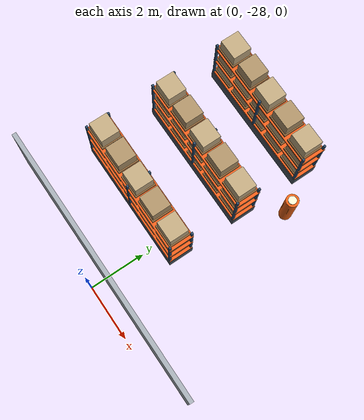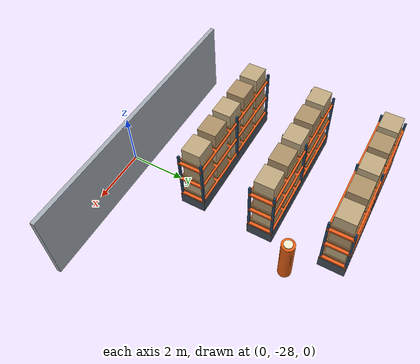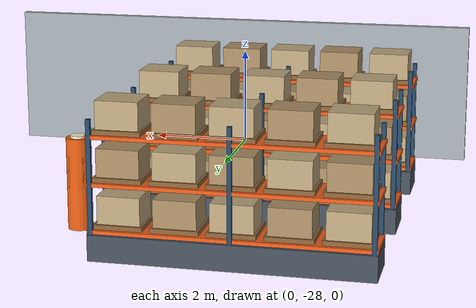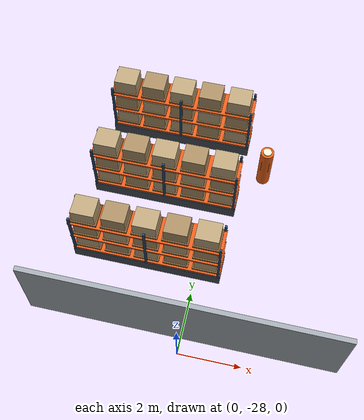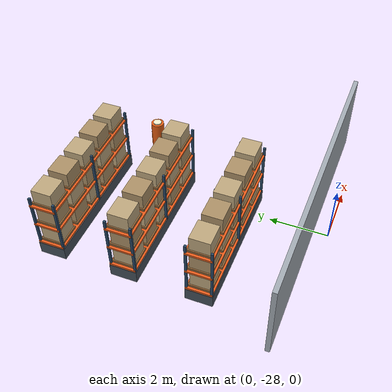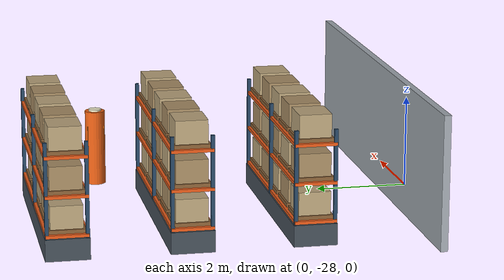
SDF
<sdf version="1.6">
 <world name="warehouse_logistics">
  <model name="warehouse_wall_south">
   <static>true</static>
   <pose>0.000000000 -27.425000000 0.000000000 0.000000000 0.000000000 0.000000000</pose>
   <link name="structure">
    <collision name="mapped_solid_collision">
     <pose>0.000000000 0.000000000 1.400000000 0.000000000 0.000000000 0.000000000</pose>
     <geometry><box><size>9.700000000 0.150000000 2.800000000</size></box></geometry>
    </collision>
    <visual name="mapped_solid_visual">
     <pose>0.000000000 0.000000000 1.400000000 0.000000000 0.000000000 0.000000000</pose>
     <geometry><box><size>9.700000000 0.150000000 2.800000000</size></box></geometry>
     <material><ambient>.64 .67 .70 1</ambient><diffuse>.64 .67 .70 1</diffuse></material>
    </visual>
   </link>
  </model>
  <model name="warehouse_rack_08">
   <static>true</static>
   <pose>-1.600000000 -20.000000000 0.000000000 0.000000000 0.000000000 0.000000000</pose>
   <link name="structure">
    <collision name="mapped_solid_collision">
     <pose>0.000000000 0.000000000 0.225000000 0.000000000 0.000000000 0.000000000</pose>
     <geometry><box><size>4.800000000 0.900000000 0.450000000</size></box></geometry>
    </collision>
    <visual name="mapped_solid_visual">
     <pose>0.000000000 0.000000000 0.225000000 0.000000000 0.000000000 0.000000000</pose>
     <geometry><box><size>4.800000000 0.900000000 0.450000000</size></box></geometry>
     <material><ambient>.27 .31 .35 1</ambient><diffuse>.27 .31 .35 1</diffuse></material>
    </visual>
    <visual name="upright_0_0_visual">
     <pose>-2.340000000 -0.405000000 1.200000000 0.000000000 0.000000000 0.000000000</pose>
     <geometry><box><size>0.075000000 0.075000000 2.400000000</size></box></geometry>
     <material><ambient>.16 .28 .40 1</ambient><diffuse>.16 .28 .40 1</diffuse></material>
    </visual>
    <visual name="upright_0_1_visual">
     <pose>-2.340000000 0.405000000 1.200000000 0.000000000 0.000000000 0.000000000</pose>
     <geometry><box><size>0.075000000 0.075000000 2.400000000</size></box></geometry>
     <material><ambient>.16 .28 .40 1</ambient><diffuse>.16 .28 .40 1</diffuse></material>
    </visual>
    <visual name="upright_1_0_visual">
     <pose>0.000000000 -0.405000000 1.200000000 0.000000000 0.000000000 0.000000000</pose>
     <geometry><box><size>0.075000000 0.075000000 2.400000000</size></box></geometry>
     <material><ambient>.16 .28 .40 1</ambient><diffuse>.16 .28 .40 1</diffuse></material>
    </visual>
    <visual name="upright_1_1_visual">
     <pose>0.000000000 0.405000000 1.200000000 0.000000000 0.000000000 0.000000000</pose>
     <geometry><box><size>0.075000000 0.075000000 2.400000000</size></box></geometry>
     <material><ambient>.16 .28 .40 1</ambient><diffuse>.16 .28 .40 1</diffuse></material>
    </visual>
    <visual name="upright_2_0_visual">
     <pose>2.340000000 -0.405000000 1.200000000 0.000000000 0.000000000 0.000000000</pose>
     <geometry><box><size>0.075000000 0.075000000 2.400000000</size></box></geometry>
     <material><ambient>.16 .28 .40 1</ambient><diffuse>.16 .28 .40 1</diffuse></material>
    </visual>
    <visual name="upright_2_1_visual">
     <pose>2.340000000 0.405000000 1.200000000 0.000000000 0.000000000 0.000000000</pose>
     <geometry><box><size>0.075000000 0.075000000 2.400000000</size></box></geometry>
     <material><ambient>.16 .28 .40 1</ambient><diffuse>.16 .28 .40 1</diffuse></material>
    </visual>
    <visual name="shelf_0_visual">
     <pose>0.000000000 0.000000000 0.500000000 0.000000000 0.000000000 0.000000000</pose>
     <geometry><box><size>4.800000000 0.870000000 0.065000000</size></box></geometry>
     <material><ambient>.92 .36 .10 1</ambient><diffuse>.92 .36 .10 1</diffuse></material>
    </visual>
    <visual name="pallet_0_0_visual">
     <pose>-1.910000000 0.000000000 0.575000000 0.000000000 0.000000000 0.000000000</pose>
     <geometry><box><size>0.820000000 0.750000000 0.080000000</size></box></geometry>
     <material><ambient>.55 .39 .22 1</ambient><diffuse>.55 .39 .22 1</diffuse></material>
    </visual>
    <visual name="load_0_0_visual">
     <pose>-1.910000000 0.000000000 0.855000000 0.000000000 0.000000000 0.000000000</pose>
     <geometry><box><size>0.730000000 0.660000000 0.480000000</size></box></geometry>
     <material><ambient>.74 .65 .49 1</ambient><diffuse>.74 .65 .49 1</diffuse></material>
    </visual>
    <visual name="pallet_0_1_visual">
     <pose>-0.960000000 0.000000000 0.575000000 0.000000000 0.000000000 0.000000000</pose>
     <geometry><box><size>0.820000000 0.750000000 0.080000000</size></box></geometry>
     <material><ambient>.55 .39 .22 1</ambient><diffuse>.55 .39 .22 1</diffuse></material>
    </visual>
    <visual name="load_0_1_visual">
     <pose>-0.960000000 0.000000000 0.855000000 0.000000000 0.000000000 0.000000000</pose>
     <geometry><box><size>0.730000000 0.660000000 0.480000000</size></box></geometry>
     <material><ambient>.67 .56 .40 1</ambient><diffuse>.67 .56 .40 1</diffuse></material>
    </visual>
    <visual name="pallet_0_2_visual">
     <pose>-0.010000000 0.000000000 0.575000000 0.000000000 0.000000000 0.000000000</pose>
     <geometry><box><size>0.820000000 0.750000000 0.080000000</size></box></geometry>
     <material><ambient>.55 .39 .22 1</ambient><diffuse>.55 .39 .22 1</diffuse></material>
    </visual>
    <visual name="load_0_2_visual">
     <pose>-0.010000000 0.000000000 0.855000000 0.000000000 0.000000000 0.000000000</pose>
     <geometry><box><size>0.730000000 0.660000000 0.480000000</size></box></geometry>
     <material><ambient>.74 .65 .49 1</ambient><diffuse>.74 .65 .49 1</diffuse></material>
    </visual>
    <visual name="pallet_0_3_visual">
     <pose>0.940000000 0.000000000 0.575000000 0.000000000 0.000000000 0.000000000</pose>
     <geometry><box><size>0.820000000 0.750000000 0.080000000</size></box></geometry>
     <material><ambient>.55 .39 .22 1</ambient><diffuse>.55 .39 .22 1</diffuse></material>
    </visual>
    <visual name="load_0_3_visual">
     <pose>0.940000000 0.000000000 0.855000000 0.000000000 0.000000000 0.000000000</pose>
     <geometry><box><size>0.730000000 0.660000000 0.480000000</size></box></geometry>
     <material><ambient>.67 .56 .40 1</ambient><diffuse>.67 .56 .40 1</diffuse></material>
    </visual>
    <visual name="pallet_0_4_visual">
     <pose>1.890000000 0.000000000 0.575000000 0.000000000 0.000000000 0.000000000</pose>
     <geometry><box><size>0.820000000 0.750000000 0.080000000</size></box></geometry>
     <material><ambient>.55 .39 .22 1</ambient><diffuse>.55 .39 .22 1</diffuse></material>
    </visual>
    <visual name="load_0_4_visual">
     <pose>1.890000000 0.000000000 0.855000000 0.000000000 0.000000000 0.000000000</pose>
     <geometry><box><size>0.730000000 0.660000000 0.480000000</size></box></geometry>
     <material><ambient>.74 .65 .49 1</ambient><diffuse>.74 .65 .49 1</diffuse></material>
    </visual>
    <visual name="shelf_1_visual">
     <pose>0.000000000 0.000000000 1.300000000 0.000000000 0.000000000 0.000000000</pose>
     <geometry><box><size>4.800000000 0.870000000 0.065000000</size></box></geometry>
     <material><ambient>.92 .36 .10 1</ambient><diffuse>.92 .36 .10 1</diffuse></material>
    </visual>
    <visual name="pallet_1_0_visual">
     <pose>-1.910000000 0.000000000 1.375000000 0.000000000 0.000000000 0.000000000</pose>
     <geometry><box><size>0.820000000 0.750000000 0.080000000</size></box></geometry>
     <material><ambient>.55 .39 .22 1</ambient><diffuse>.55 .39 .22 1</diffuse></material>
    </visual>
    <visual name="load_1_0_visual">
     <pose>-1.910000000 0.000000000 1.655000000 0.000000000 0.000000000 0.000000000</pose>
     <geometry><box><size>0.730000000 0.660000000 0.480000000</size></box></geometry>
     <material><ambient>.67 .56 .40 1</ambient><diffuse>.67 .56 .40 1</diffuse></material>
    </visual>
    <visual name="pallet_1_1_visual">
     <pose>-0.960000000 0.000000000 1.375000000 0.000000000 0.000000000 0.000000000</pose>
     <geometry><box><size>0.820000000 0.750000000 0.080000000</size></box></geometry>
     <material><ambient>.55 .39 .22 1</ambient><diffuse>.55 .39 .22 1</diffuse></material>
    </visual>
    <visual name="load_1_1_visual">
     <pose>-0.960000000 0.000000000 1.655000000 0.000000000 0.000000000 0.000000000</pose>
     <geometry><box><size>0.730000000 0.660000000 0.480000000</size></box></geometry>
     <material><ambient>.74 .65 .49 1</ambient><diffuse>.74 .65 .49 1</diffuse></material>
    </visual>
    <visual name="pallet_1_2_visual">
     <pose>-0.010000000 0.000000000 1.375000000 0.000000000 0.000000000 0.000000000</pose>
     <geometry><box><size>0.820000000 0.750000000 0.080000000</size></box></geometry>
     <material><ambient>.55 .39 .22 1</ambient><diffuse>.55 .39 .22 1</diffuse></material>
    </visual>
    <visual name="load_1_2_visual">
     <pose>-0.010000000 0.000000000 1.655000000 0.000000000 0.000000000 0.000000000</pose>
     <geometry><box><size>0.730000000 0.660000000 0.480000000</size></box></geometry>
     <material><ambient>.67 .56 .40 1</ambient><diffuse>.67 .56 .40 1</diffuse></material>
    </visual>
    <visual name="pallet_1_3_visual">
     <pose>0.940000000 0.000000000 1.375000000 0.000000000 0.000000000 0.000000000</pose>
     <geometry><box><size>0.820000000 0.750000000 0.080000000</size></box></geometry>
     <material><ambient>.55 .39 .22 1</ambient><diffuse>.55 .39 .22 1</diffuse></material>
    </visual>
    <visual name="load_1_3_visual">
     <pose>0.940000000 0.000000000 1.655000000 0.000000000 0.000000000 0.000000000</pose>
     <geometry><box><size>0.730000000 0.660000000 0.480000000</size></box></geometry>
     <material><ambient>.74 .65 .49 1</ambient><diffuse>.74 .65 .49 1</diffuse></material>
    </visual>
    <visual name="pallet_1_4_visual">
     <pose>1.890000000 0.000000000 1.375000000 0.000000000 0.000000000 0.000000000</pose>
     <geometry><box><size>0.820000000 0.750000000 0.080000000</size></box></geometry>
     <material><ambient>.55 .39 .22 1</ambient><diffuse>.55 .39 .22 1</diffuse></material>
    </visual>
    <visual name="load_1_4_visual">
     <pose>1.890000000 0.000000000 1.655000000 0.000000000 0.000000000 0.000000000</pose>
     <geometry><box><size>0.730000000 0.660000000 0.480000000</size></box></geometry>
     <material><ambient>.67 .56 .40 1</ambient><diffuse>.67 .56 .40 1</diffuse></material>
    </visual>
    <visual name="shelf_2_visual">
     <pose>0.000000000 0.000000000 2.100000000 0.000000000 0.000000000 0.000000000</pose>
     <geometry><box><size>4.800000000 0.870000000 0.065000000</size></box></geometry>
     <material><ambient>.92 .36 .10 1</ambient><diffuse>.92 .36 .10 1</diffuse></material>
    </visual>
    <visual name="pallet_2_0_visual">
     <pose>-1.910000000 0.000000000 2.175000000 0.000000000 0.000000000 0.000000000</pose>
     <geometry><box><size>0.820000000 0.750000000 0.080000000</size></box></geometry>
     <material><ambient>.55 .39 .22 1</ambient><diffuse>.55 .39 .22 1</diffuse></material>
    </visual>
    <visual name="load_2_0_visual">
     <pose>-1.910000000 0.000000000 2.455000000 0.000000000 0.000000000 0.000000000</pose>
     <geometry><box><size>0.730000000 0.660000000 0.480000000</size></box></geometry>
     <material><ambient>.74 .65 .49 1</ambient><diffuse>.74 .65 .49 1</diffuse></material>
    </visual>
    <visual name="pallet_2_1_visual">
     <pose>-0.960000000 0.000000000 2.175000000 0.000000000 0.000000000 0.000000000</pose>
     <geometry><box><size>0.820000000 0.750000000 0.080000000</size></box></geometry>
     <material><ambient>.55 .39 .22 1</ambient><diffuse>.55 .39 .22 1</diffuse></material>
    </visual>
    <visual name="load_2_1_visual">
     <pose>-0.960000000 0.000000000 2.455000000 0.000000000 0.000000000 0.000000000</pose>
     <geometry><box><size>0.730000000 0.660000000 0.480000000</size></box></geometry>
     <material><ambient>.67 .56 .40 1</ambient><diffuse>.67 .56 .40 1</diffuse></material>
    </visual>
    <visual name="pallet_2_2_visual">
     <pose>-0.010000000 0.000000000 2.175000000 0.000000000 0.000000000 0.000000000</pose>
     <geometry><box><size>0.820000000 0.750000000 0.080000000</size></box></geometry>
     <material><ambient>.55 .39 .22 1</ambient><diffuse>.55 .39 .22 1</diffuse></material>
    </visual>
    <visual name="load_2_2_visual">
     <pose>-0.010000000 0.000000000 2.455000000 0.000000000 0.000000000 0.000000000</pose>
     <geometry><box><size>0.730000000 0.660000000 0.480000000</size></box></geometry>
     <material><ambient>.74 .65 .49 1</ambient><diffuse>.74 .65 .49 1</diffuse></material>
    </visual>
    <visual name="pallet_2_3_visual">
     <pose>0.940000000 0.000000000 2.175000000 0.000000000 0.000000000 0.000000000</pose>
     <geometry><box><size>0.820000000 0.750000000 0.080000000</size></box></geometry>
     <material><ambient>.55 .39 .22 1</ambient><diffuse>.55 .39 .22 1</diffuse></material>
    </visual>
    <visual name="load_2_3_visual">
     <pose>0.940000000 0.000000000 2.455000000 0.000000000 0.000000000 0.000000000</pose>
     <geometry><box><size>0.730000000 0.660000000 0.480000000</size></box></geometry>
     <material><ambient>.67 .56 .40 1</ambient><diffuse>.67 .56 .40 1</diffuse></material>
    </visual>
    <visual name="pallet_2_4_visual">
     <pose>1.890000000 0.000000000 2.175000000 0.000000000 0.000000000 0.000000000</pose>
     <geometry><box><size>0.820000000 0.750000000 0.080000000</size></box></geometry>
     <material><ambient>.55 .39 .22 1</ambient><diffuse>.55 .39 .22 1</diffuse></material>
    </visual>
    <visual name="load_2_4_visual">
     <pose>1.890000000 0.000000000 2.455000000 0.000000000 0.000000000 0.000000000</pose>
     <geometry><box><size>0.730000000 0.660000000 0.480000000</size></box></geometry>
     <material><ambient>.74 .65 .49 1</ambient><diffuse>.74 .65 .49 1</diffuse></material>
    </visual>
   </link>
  </model>
  <model name="warehouse_rack_09">
   <static>true</static>
   <pose>-1.600000000 -22.500000000 0.000000000 0.000000000 0.000000000 0.000000000</pose>
   <link name="structure">
    <collision name="mapped_solid_collision">
     <pose>0.000000000 0.000000000 0.225000000 0.000000000 0.000000000 0.000000000</pose>
     <geometry><box><size>4.800000000 0.900000000 0.450000000</size></box></geometry>
    </collision>
    <visual name="mapped_solid_visual">
     <pose>0.000000000 0.000000000 0.225000000 0.000000000 0.000000000 0.000000000</pose>
     <geometry><box><size>4.800000000 0.900000000 0.450000000</size></box></geometry>
     <material><ambient>.27 .31 .35 1</ambient><diffuse>.27 .31 .35 1</diffuse></material>
    </visual>
    <visual name="upright_0_0_visual">
     <pose>-2.340000000 -0.405000000 1.200000000 0.000000000 0.000000000 0.000000000</pose>
     <geometry><box><size>0.075000000 0.075000000 2.400000000</size></box></geometry>
     <material><ambient>.16 .28 .40 1</ambient><diffuse>.16 .28 .40 1</diffuse></material>
    </visual>
    <visual name="upright_0_1_visual">
     <pose>-2.340000000 0.405000000 1.200000000 0.000000000 0.000000000 0.000000000</pose>
     <geometry><box><size>0.075000000 0.075000000 2.400000000</size></box></geometry>
     <material><ambient>.16 .28 .40 1</ambient><diffuse>.16 .28 .40 1</diffuse></material>
    </visual>
    <visual name="upright_1_0_visual">
     <pose>0.000000000 -0.405000000 1.200000000 0.000000000 0.000000000 0.000000000</pose>
     <geometry><box><size>0.075000000 0.075000000 2.400000000</size></box></geometry>
     <material><ambient>.16 .28 .40 1</ambient><diffuse>.16 .28 .40 1</diffuse></material>
    </visual>
    <visual name="upright_1_1_visual">
     <pose>0.000000000 0.405000000 1.200000000 0.000000000 0.000000000 0.000000000</pose>
     <geometry><box><size>0.075000000 0.075000000 2.400000000</size></box></geometry>
     <material><ambient>.16 .28 .40 1</ambient><diffuse>.16 .28 .40 1</diffuse></material>
    </visual>
    <visual name="upright_2_0_visual">
     <pose>2.340000000 -0.405000000 1.200000000 0.000000000 0.000000000 0.000000000</pose>
     <geometry><box><size>0.075000000 0.075000000 2.400000000</size></box></geometry>
     <material><ambient>.16 .28 .40 1</ambient><diffuse>.16 .28 .40 1</diffuse></material>
    </visual>
    <visual name="upright_2_1_visual">
     <pose>2.340000000 0.405000000 1.200000000 0.000000000 0.000000000 0.000000000</pose>
     <geometry><box><size>0.075000000 0.075000000 2.400000000</size></box></geometry>
     <material><ambient>.16 .28 .40 1</ambient><diffuse>.16 .28 .40 1</diffuse></material>
    </visual>
    <visual name="shelf_0_visual">
     <pose>0.000000000 0.000000000 0.500000000 0.000000000 0.000000000 0.000000000</pose>
     <geometry><box><size>4.800000000 0.870000000 0.065000000</size></box></geometry>
     <material><ambient>.92 .36 .10 1</ambient><diffuse>.92 .36 .10 1</diffuse></material>
    </visual>
    <visual name="pallet_0_0_visual">
     <pose>-1.910000000 0.000000000 0.575000000 0.000000000 0.000000000 0.000000000</pose>
     <geometry><box><size>0.820000000 0.750000000 0.080000000</size></box></geometry>
     <material><ambient>.55 .39 .22 1</ambient><diffuse>.55 .39 .22 1</diffuse></material>
    </visual>
    <visual name="load_0_0_visual">
     <pose>-1.910000000 0.000000000 0.855000000 0.000000000 0.000000000 0.000000000</pose>
     <geometry><box><size>0.730000000 0.660000000 0.480000000</size></box></geometry>
     <material><ambient>.74 .65 .49 1</ambient><diffuse>.74 .65 .49 1</diffuse></material>
    </visual>
    <visual name="pallet_0_1_visual">
     <pose>-0.960000000 0.000000000 0.575000000 0.000000000 0.000000000 0.000000000</pose>
     <geometry><box><size>0.820000000 0.750000000 0.080000000</size></box></geometry>
     <material><ambient>.55 .39 .22 1</ambient><diffuse>.55 .39 .22 1</diffuse></material>
    </visual>
    <visual name="load_0_1_visual">
     <pose>-0.960000000 0.000000000 0.855000000 0.000000000 0.000000000 0.000000000</pose>
     <geometry><box><size>0.730000000 0.660000000 0.480000000</size></box></geometry>
     <material><ambient>.67 .56 .40 1</ambient><diffuse>.67 .56 .40 1</diffuse></material>
    </visual>
    <visual name="pallet_0_2_visual">
     <pose>-0.010000000 0.000000000 0.575000000 0.000000000 0.000000000 0.000000000</pose>
     <geometry><box><size>0.820000000 0.750000000 0.080000000</size></box></geometry>
     <material><ambient>.55 .39 .22 1</ambient><diffuse>.55 .39 .22 1</diffuse></material>
    </visual>
    <visual name="load_0_2_visual">
     <pose>-0.010000000 0.000000000 0.855000000 0.000000000 0.000000000 0.000000000</pose>
     <geometry><box><size>0.730000000 0.660000000 0.480000000</size></box></geometry>
     <material><ambient>.74 .65 .49 1</ambient><diffuse>.74 .65 .49 1</diffuse></material>
    </visual>
    <visual name="pallet_0_3_visual">
     <pose>0.940000000 0.000000000 0.575000000 0.000000000 0.000000000 0.000000000</pose>
     <geometry><box><size>0.820000000 0.750000000 0.080000000</size></box></geometry>
     <material><ambient>.55 .39 .22 1</ambient><diffuse>.55 .39 .22 1</diffuse></material>
    </visual>
    <visual name="load_0_3_visual">
     <pose>0.940000000 0.000000000 0.855000000 0.000000000 0.000000000 0.000000000</pose>
     <geometry><box><size>0.730000000 0.660000000 0.480000000</size></box></geometry>
     <material><ambient>.67 .56 .40 1</ambient><diffuse>.67 .56 .40 1</diffuse></material>
    </visual>
    <visual name="pallet_0_4_visual">
     <pose>1.890000000 0.000000000 0.575000000 0.000000000 0.000000000 0.000000000</pose>
     <geometry><box><size>0.820000000 0.750000000 0.080000000</size></box></geometry>
     <material><ambient>.55 .39 .22 1</ambient><diffuse>.55 .39 .22 1</diffuse></material>
    </visual>
    <visual name="load_0_4_visual">
     <pose>1.890000000 0.000000000 0.855000000 0.000000000 0.000000000 0.000000000</pose>
     <geometry><box><size>0.730000000 0.660000000 0.480000000</size></box></geometry>
     <material><ambient>.74 .65 .49 1</ambient><diffuse>.74 .65 .49 1</diffuse></material>
    </visual>
    <visual name="shelf_1_visual">
     <pose>0.000000000 0.000000000 1.300000000 0.000000000 0.000000000 0.000000000</pose>
     <geometry><box><size>4.800000000 0.870000000 0.065000000</size></box></geometry>
     <material><ambient>.92 .36 .10 1</ambient><diffuse>.92 .36 .10 1</diffuse></material>
    </visual>
    <visual name="pallet_1_0_visual">
     <pose>-1.910000000 0.000000000 1.375000000 0.000000000 0.000000000 0.000000000</pose>
     <geometry><box><size>0.820000000 0.750000000 0.080000000</size></box></geometry>
     <material><ambient>.55 .39 .22 1</ambient><diffuse>.55 .39 .22 1</diffuse></material>
    </visual>
    <visual name="load_1_0_visual">
     <pose>-1.910000000 0.000000000 1.655000000 0.000000000 0.000000000 0.000000000</pose>
     <geometry><box><size>0.730000000 0.660000000 0.480000000</size></box></geometry>
     <material><ambient>.67 .56 .40 1</ambient><diffuse>.67 .56 .40 1</diffuse></material>
    </visual>
    <visual name="pallet_1_1_visual">
     <pose>-0.960000000 0.000000000 1.375000000 0.000000000 0.000000000 0.000000000</pose>
     <geometry><box><size>0.820000000 0.750000000 0.080000000</size></box></geometry>
     <material><ambient>.55 .39 .22 1</ambient><diffuse>.55 .39 .22 1</diffuse></material>
    </visual>
    <visual name="load_1_1_visual">
     <pose>-0.960000000 0.000000000 1.655000000 0.000000000 0.000000000 0.000000000</pose>
     <geometry><box><size>0.730000000 0.660000000 0.480000000</size></box></geometry>
     <material><ambient>.74 .65 .49 1</ambient><diffuse>.74 .65 .49 1</diffuse></material>
    </visual>
    <visual name="pallet_1_2_visual">
     <pose>-0.010000000 0.000000000 1.375000000 0.000000000 0.000000000 0.000000000</pose>
     <geometry><box><size>0.820000000 0.750000000 0.080000000</size></box></geometry>
     <material><ambient>.55 .39 .22 1</ambient><diffuse>.55 .39 .22 1</diffuse></material>
    </visual>
    <visual name="load_1_2_visual">
     <pose>-0.010000000 0.000000000 1.655000000 0.000000000 0.000000000 0.000000000</pose>
     <geometry><box><size>0.730000000 0.660000000 0.480000000</size></box></geometry>
     <material><ambient>.67 .56 .40 1</ambient><diffuse>.67 .56 .40 1</diffuse></material>
    </visual>
    <visual name="pallet_1_3_visual">
     <pose>0.940000000 0.000000000 1.375000000 0.000000000 0.000000000 0.000000000</pose>
     <geometry><box><size>0.820000000 0.750000000 0.080000000</size></box></geometry>
     <material><ambient>.55 .39 .22 1</ambient><diffuse>.55 .39 .22 1</diffuse></material>
    </visual>
    <visual name="load_1_3_visual">
     <pose>0.940000000 0.000000000 1.655000000 0.000000000 0.000000000 0.000000000</pose>
     <geometry><box><size>0.730000000 0.660000000 0.480000000</size></box></geometry>
     <material><ambient>.74 .65 .49 1</ambient><diffuse>.74 .65 .49 1</diffuse></material>
    </visual>
    <visual name="pallet_1_4_visual">
     <pose>1.890000000 0.000000000 1.375000000 0.000000000 0.000000000 0.000000000</pose>
     <geometry><box><size>0.820000000 0.750000000 0.080000000</size></box></geometry>
     <material><ambient>.55 .39 .22 1</ambient><diffuse>.55 .39 .22 1</diffuse></material>
    </visual>
    <visual name="load_1_4_visual">
     <pose>1.890000000 0.000000000 1.655000000 0.000000000 0.000000000 0.000000000</pose>
     <geometry><box><size>0.730000000 0.660000000 0.480000000</size></box></geometry>
     <material><ambient>.67 .56 .40 1</ambient><diffuse>.67 .56 .40 1</diffuse></material>
    </visual>
    <visual name="shelf_2_visual">
     <pose>0.000000000 0.000000000 2.100000000 0.000000000 0.000000000 0.000000000</pose>
     <geometry><box><size>4.800000000 0.870000000 0.065000000</size></box></geometry>
     <material><ambient>.92 .36 .10 1</ambient><diffuse>.92 .36 .10 1</diffuse></material>
    </visual>
    <visual name="pallet_2_0_visual">
     <pose>-1.910000000 0.000000000 2.175000000 0.000000000 0.000000000 0.000000000</pose>
     <geometry><box><size>0.820000000 0.750000000 0.080000000</size></box></geometry>
     <material><ambient>.55 .39 .22 1</ambient><diffuse>.55 .39 .22 1</diffuse></material>
    </visual>
    <visual name="load_2_0_visual">
     <pose>-1.910000000 0.000000000 2.455000000 0.000000000 0.000000000 0.000000000</pose>
     <geometry><box><size>0.730000000 0.660000000 0.480000000</size></box></geometry>
     <material><ambient>.74 .65 .49 1</ambient><diffuse>.74 .65 .49 1</diffuse></material>
    </visual>
    <visual name="pallet_2_1_visual">
     <pose>-0.960000000 0.000000000 2.175000000 0.000000000 0.000000000 0.000000000</pose>
     <geometry><box><size>0.820000000 0.750000000 0.080000000</size></box></geometry>
     <material><ambient>.55 .39 .22 1</ambient><diffuse>.55 .39 .22 1</diffuse></material>
    </visual>
    <visual name="load_2_1_visual">
     <pose>-0.960000000 0.000000000 2.455000000 0.000000000 0.000000000 0.000000000</pose>
     <geometry><box><size>0.730000000 0.660000000 0.480000000</size></box></geometry>
     <material><ambient>.67 .56 .40 1</ambient><diffuse>.67 .56 .40 1</diffuse></material>
    </visual>
    <visual name="pallet_2_2_visual">
     <pose>-0.010000000 0.000000000 2.175000000 0.000000000 0.000000000 0.000000000</pose>
     <geometry><box><size>0.820000000 0.750000000 0.080000000</size></box></geometry>
     <material><ambient>.55 .39 .22 1</ambient><diffuse>.55 .39 .22 1</diffuse></material>
    </visual>
    <visual name="load_2_2_visual">
     <pose>-0.010000000 0.000000000 2.455000000 0.000000000 0.000000000 0.000000000</pose>
     <geometry><box><size>0.730000000 0.660000000 0.480000000</size></box></geometry>
     <material><ambient>.74 .65 .49 1</ambient><diffuse>.74 .65 .49 1</diffuse></material>
    </visual>
    <visual name="pallet_2_3_visual">
     <pose>0.940000000 0.000000000 2.175000000 0.000000000 0.000000000 0.000000000</pose>
     <geometry><box><size>0.820000000 0.750000000 0.080000000</size></box></geometry>
     <material><ambient>.55 .39 .22 1</ambient><diffuse>.55 .39 .22 1</diffuse></material>
    </visual>
    <visual name="load_2_3_visual">
     <pose>0.940000000 0.000000000 2.455000000 0.000000000 0.000000000 0.000000000</pose>
     <geometry><box><size>0.730000000 0.660000000 0.480000000</size></box></geometry>
     <material><ambient>.67 .56 .40 1</ambient><diffuse>.67 .56 .40 1</diffuse></material>
    </visual>
    <visual name="pallet_2_4_visual">
     <pose>1.890000000 0.000000000 2.175000000 0.000000000 0.000000000 0.000000000</pose>
     <geometry><box><size>0.820000000 0.750000000 0.080000000</size></box></geometry>
     <material><ambient>.55 .39 .22 1</ambient><diffuse>.55 .39 .22 1</diffuse></material>
    </visual>
    <visual name="load_2_4_visual">
     <pose>1.890000000 0.000000000 2.455000000 0.000000000 0.000000000 0.000000000</pose>
     <geometry><box><size>0.730000000 0.660000000 0.480000000</size></box></geometry>
     <material><ambient>.74 .65 .49 1</ambient><diffuse>.74 .65 .49 1</diffuse></material>
    </visual>
   </link>
  </model>
  <model name="warehouse_rack_10">
   <static>true</static>
   <pose>-1.600000000 -25.000000000 0.000000000 0.000000000 0.000000000 0.000000000</pose>
   <link name="structure">
    <collision name="mapped_solid_collision">
     <pose>0.000000000 0.000000000 0.225000000 0.000000000 0.000000000 0.000000000</pose>
     <geometry><box><size>4.800000000 0.900000000 0.450000000</size></box></geometry>
    </collision>
    <visual name="mapped_solid_visual">
     <pose>0.000000000 0.000000000 0.225000000 0.000000000 0.000000000 0.000000000</pose>
     <geometry><box><size>4.800000000 0.900000000 0.450000000</size></box></geometry>
     <material><ambient>.27 .31 .35 1</ambient><diffuse>.27 .31 .35 1</diffuse></material>
    </visual>
    <visual name="upright_0_0_visual">
     <pose>-2.340000000 -0.405000000 1.200000000 0.000000000 0.000000000 0.000000000</pose>
     <geometry><box><size>0.075000000 0.075000000 2.400000000</size></box></geometry>
     <material><ambient>.16 .28 .40 1</ambient><diffuse>.16 .28 .40 1</diffuse></material>
    </visual>
    <visual name="upright_0_1_visual">
     <pose>-2.340000000 0.405000000 1.200000000 0.000000000 0.000000000 0.000000000</pose>
     <geometry><box><size>0.075000000 0.075000000 2.400000000</size></box></geometry>
     <material><ambient>.16 .28 .40 1</ambient><diffuse>.16 .28 .40 1</diffuse></material>
    </visual>
    <visual name="upright_1_0_visual">
     <pose>0.000000000 -0.405000000 1.200000000 0.000000000 0.000000000 0.000000000</pose>
     <geometry><box><size>0.075000000 0.075000000 2.400000000</size></box></geometry>
     <material><ambient>.16 .28 .40 1</ambient><diffuse>.16 .28 .40 1</diffuse></material>
    </visual>
    <visual name="upright_1_1_visual">
     <pose>0.000000000 0.405000000 1.200000000 0.000000000 0.000000000 0.000000000</pose>
     <geometry><box><size>0.075000000 0.075000000 2.400000000</size></box></geometry>
     <material><ambient>.16 .28 .40 1</ambient><diffuse>.16 .28 .40 1</diffuse></material>
    </visual>
    <visual name="upright_2_0_visual">
     <pose>2.340000000 -0.405000000 1.200000000 0.000000000 0.000000000 0.000000000</pose>
     <geometry><box><size>0.075000000 0.075000000 2.400000000</size></box></geometry>
     <material><ambient>.16 .28 .40 1</ambient><diffuse>.16 .28 .40 1</diffuse></material>
    </visual>
    <visual name="upright_2_1_visual">
     <pose>2.340000000 0.405000000 1.200000000 0.000000000 0.000000000 0.000000000</pose>
     <geometry><box><size>0.075000000 0.075000000 2.400000000</size></box></geometry>
     <material><ambient>.16 .28 .40 1</ambient><diffuse>.16 .28 .40 1</diffuse></material>
    </visual>
    <visual name="shelf_0_visual">
     <pose>0.000000000 0.000000000 0.500000000 0.000000000 0.000000000 0.000000000</pose>
     <geometry><box><size>4.800000000 0.870000000 0.065000000</size></box></geometry>
     <material><ambient>.92 .36 .10 1</ambient><diffuse>.92 .36 .10 1</diffuse></material>
    </visual>
    <visual name="pallet_0_0_visual">
     <pose>-1.910000000 0.000000000 0.575000000 0.000000000 0.000000000 0.000000000</pose>
     <geometry><box><size>0.820000000 0.750000000 0.080000000</size></box></geometry>
     <material><ambient>.55 .39 .22 1</ambient><diffuse>.55 .39 .22 1</diffuse></material>
    </visual>
    <visual name="load_0_0_visual">
     <pose>-1.910000000 0.000000000 0.855000000 0.000000000 0.000000000 0.000000000</pose>
     <geometry><box><size>0.730000000 0.660000000 0.480000000</size></box></geometry>
     <material><ambient>.74 .65 .49 1</ambient><diffuse>.74 .65 .49 1</diffuse></material>
    </visual>
    <visual name="pallet_0_1_visual">
     <pose>-0.960000000 0.000000000 0.575000000 0.000000000 0.000000000 0.000000000</pose>
     <geometry><box><size>0.820000000 0.750000000 0.080000000</size></box></geometry>
     <material><ambient>.55 .39 .22 1</ambient><diffuse>.55 .39 .22 1</diffuse></material>
    </visual>
    <visual name="load_0_1_visual">
     <pose>-0.960000000 0.000000000 0.855000000 0.000000000 0.000000000 0.000000000</pose>
     <geometry><box><size>0.730000000 0.660000000 0.480000000</size></box></geometry>
     <material><ambient>.67 .56 .40 1</ambient><diffuse>.67 .56 .40 1</diffuse></material>
    </visual>
    <visual name="pallet_0_2_visual">
     <pose>-0.010000000 0.000000000 0.575000000 0.000000000 0.000000000 0.000000000</pose>
     <geometry><box><size>0.820000000 0.750000000 0.080000000</size></box></geometry>
     <material><ambient>.55 .39 .22 1</ambient><diffuse>.55 .39 .22 1</diffuse></material>
    </visual>
    <visual name="load_0_2_visual">
     <pose>-0.010000000 0.000000000 0.855000000 0.000000000 0.000000000 0.000000000</pose>
     <geometry><box><size>0.730000000 0.660000000 0.480000000</size></box></geometry>
     <material><ambient>.74 .65 .49 1</ambient><diffuse>.74 .65 .49 1</diffuse></material>
    </visual>
    <visual name="pallet_0_3_visual">
     <pose>0.940000000 0.000000000 0.575000000 0.000000000 0.000000000 0.000000000</pose>
     <geometry><box><size>0.820000000 0.750000000 0.080000000</size></box></geometry>
     <material><ambient>.55 .39 .22 1</ambient><diffuse>.55 .39 .22 1</diffuse></material>
    </visual>
    <visual name="load_0_3_visual">
     <pose>0.940000000 0.000000000 0.855000000 0.000000000 0.000000000 0.000000000</pose>
     <geometry><box><size>0.730000000 0.660000000 0.480000000</size></box></geometry>
     <material><ambient>.67 .56 .40 1</ambient><diffuse>.67 .56 .40 1</diffuse></material>
    </visual>
    <visual name="pallet_0_4_visual">
     <pose>1.890000000 0.000000000 0.575000000 0.000000000 0.000000000 0.000000000</pose>
     <geometry><box><size>0.820000000 0.750000000 0.080000000</size></box></geometry>
     <material><ambient>.55 .39 .22 1</ambient><diffuse>.55 .39 .22 1</diffuse></material>
    </visual>
    <visual name="load_0_4_visual">
     <pose>1.890000000 0.000000000 0.855000000 0.000000000 0.000000000 0.000000000</pose>
     <geometry><box><size>0.730000000 0.660000000 0.480000000</size></box></geometry>
     <material><ambient>.74 .65 .49 1</ambient><diffuse>.74 .65 .49 1</diffuse></material>
    </visual>
    <visual name="shelf_1_visual">
     <pose>0.000000000 0.000000000 1.300000000 0.000000000 0.000000000 0.000000000</pose>
     <geometry><box><size>4.800000000 0.870000000 0.065000000</size></box></geometry>
     <material><ambient>.92 .36 .10 1</ambient><diffuse>.92 .36 .10 1</diffuse></material>
    </visual>
    <visual name="pallet_1_0_visual">
     <pose>-1.910000000 0.000000000 1.375000000 0.000000000 0.000000000 0.000000000</pose>
     <geometry><box><size>0.820000000 0.750000000 0.080000000</size></box></geometry>
     <material><ambient>.55 .39 .22 1</ambient><diffuse>.55 .39 .22 1</diffuse></material>
    </visual>
    <visual name="load_1_0_visual">
     <pose>-1.910000000 0.000000000 1.655000000 0.000000000 0.000000000 0.000000000</pose>
     <geometry><box><size>0.730000000 0.660000000 0.480000000</size></box></geometry>
     <material><ambient>.67 .56 .40 1</ambient><diffuse>.67 .56 .40 1</diffuse></material>
    </visual>
    <visual name="pallet_1_1_visual">
     <pose>-0.960000000 0.000000000 1.375000000 0.000000000 0.000000000 0.000000000</pose>
     <geometry><box><size>0.820000000 0.750000000 0.080000000</size></box></geometry>
     <material><ambient>.55 .39 .22 1</ambient><diffuse>.55 .39 .22 1</diffuse></material>
    </visual>
    <visual name="load_1_1_visual">
     <pose>-0.960000000 0.000000000 1.655000000 0.000000000 0.000000000 0.000000000</pose>
     <geometry><box><size>0.730000000 0.660000000 0.480000000</size></box></geometry>
     <material><ambient>.74 .65 .49 1</ambient><diffuse>.74 .65 .49 1</diffuse></material>
    </visual>
    <visual name="pallet_1_2_visual">
     <pose>-0.010000000 0.000000000 1.375000000 0.000000000 0.000000000 0.000000000</pose>
     <geometry><box><size>0.820000000 0.750000000 0.080000000</size></box></geometry>
     <material><ambient>.55 .39 .22 1</ambient><diffuse>.55 .39 .22 1</diffuse></material>
    </visual>
    <visual name="load_1_2_visual">
     <pose>-0.010000000 0.000000000 1.655000000 0.000000000 0.000000000 0.000000000</pose>
     <geometry><box><size>0.730000000 0.660000000 0.480000000</size></box></geometry>
     <material><ambient>.67 .56 .40 1</ambient><diffuse>.67 .56 .40 1</diffuse></material>
    </visual>
    <visual name="pallet_1_3_visual">
     <pose>0.940000000 0.000000000 1.375000000 0.000000000 0.000000000 0.000000000</pose>
     <geometry><box><size>0.820000000 0.750000000 0.080000000</size></box></geometry>
     <material><ambient>.55 .39 .22 1</ambient><diffuse>.55 .39 .22 1</diffuse></material>
    </visual>
    <visual name="load_1_3_visual">
     <pose>0.940000000 0.000000000 1.655000000 0.000000000 0.000000000 0.000000000</pose>
     <geometry><box><size>0.730000000 0.660000000 0.480000000</size></box></geometry>
     <material><ambient>.74 .65 .49 1</ambient><diffuse>.74 .65 .49 1</diffuse></material>
    </visual>
    <visual name="pallet_1_4_visual">
     <pose>1.890000000 0.000000000 1.375000000 0.000000000 0.000000000 0.000000000</pose>
     <geometry><box><size>0.820000000 0.750000000 0.080000000</size></box></geometry>
     <material><ambient>.55 .39 .22 1</ambient><diffuse>.55 .39 .22 1</diffuse></material>
    </visual>
    <visual name="load_1_4_visual">
     <pose>1.890000000 0.000000000 1.655000000 0.000000000 0.000000000 0.000000000</pose>
     <geometry><box><size>0.730000000 0.660000000 0.480000000</size></box></geometry>
     <material><ambient>.67 .56 .40 1</ambient><diffuse>.67 .56 .40 1</diffuse></material>
    </visual>
    <visual name="shelf_2_visual">
     <pose>0.000000000 0.000000000 2.100000000 0.000000000 0.000000000 0.000000000</pose>
     <geometry><box><size>4.800000000 0.870000000 0.065000000</size></box></geometry>
     <material><ambient>.92 .36 .10 1</ambient><diffuse>.92 .36 .10 1</diffuse></material>
    </visual>
    <visual name="pallet_2_0_visual">
     <pose>-1.910000000 0.000000000 2.175000000 0.000000000 0.000000000 0.000000000</pose>
     <geometry><box><size>0.820000000 0.750000000 0.080000000</size></box></geometry>
     <material><ambient>.55 .39 .22 1</ambient><diffuse>.55 .39 .22 1</diffuse></material>
    </visual>
    <visual name="load_2_0_visual">
     <pose>-1.910000000 0.000000000 2.455000000 0.000000000 0.000000000 0.000000000</pose>
     <geometry><box><size>0.730000000 0.660000000 0.480000000</size></box></geometry>
     <material><ambient>.74 .65 .49 1</ambient><diffuse>.74 .65 .49 1</diffuse></material>
    </visual>
    <visual name="pallet_2_1_visual">
     <pose>-0.960000000 0.000000000 2.175000000 0.000000000 0.000000000 0.000000000</pose>
     <geometry><box><size>0.820000000 0.750000000 0.080000000</size></box></geometry>
     <material><ambient>.55 .39 .22 1</ambient><diffuse>.55 .39 .22 1</diffuse></material>
    </visual>
    <visual name="load_2_1_visual">
     <pose>-0.960000000 0.000000000 2.455000000 0.000000000 0.000000000 0.000000000</pose>
     <geometry><box><size>0.730000000 0.660000000 0.480000000</size></box></geometry>
     <material><ambient>.67 .56 .40 1</ambient><diffuse>.67 .56 .40 1</diffuse></material>
    </visual>
    <visual name="pallet_2_2_visual">
     <pose>-0.010000000 0.000000000 2.175000000 0.000000000 0.000000000 0.000000000</pose>
     <geometry><box><size>0.820000000 0.750000000 0.080000000</size></box></geometry>
     <material><ambient>.55 .39 .22 1</ambient><diffuse>.55 .39 .22 1</diffuse></material>
    </visual>
    <visual name="load_2_2_visual">
     <pose>-0.010000000 0.000000000 2.455000000 0.000000000 0.000000000 0.000000000</pose>
     <geometry><box><size>0.730000000 0.660000000 0.480000000</size></box></geometry>
     <material><ambient>.74 .65 .49 1</ambient><diffuse>.74 .65 .49 1</diffuse></material>
    </visual>
    <visual name="pallet_2_3_visual">
     <pose>0.940000000 0.000000000 2.175000000 0.000000000 0.000000000 0.000000000</pose>
     <geometry><box><size>0.820000000 0.750000000 0.080000000</size></box></geometry>
     <material><ambient>.55 .39 .22 1</ambient><diffuse>.55 .39 .22 1</diffuse></material>
    </visual>
    <visual name="load_2_3_visual">
     <pose>0.940000000 0.000000000 2.455000000 0.000000000 0.000000000 0.000000000</pose>
     <geometry><box><size>0.730000000 0.660000000 0.480000000</size></box></geometry>
     <material><ambient>.67 .56 .40 1</ambient><diffuse>.67 .56 .40 1</diffuse></material>
    </visual>
    <visual name="pallet_2_4_visual">
     <pose>1.890000000 0.000000000 2.175000000 0.000000000 0.000000000 0.000000000</pose>
     <geometry><box><size>0.820000000 0.750000000 0.080000000</size></box></geometry>
     <material><ambient>.55 .39 .22 1</ambient><diffuse>.55 .39 .22 1</diffuse></material>
    </visual>
    <visual name="load_2_4_visual">
     <pose>1.890000000 0.000000000 2.455000000 0.000000000 0.000000000 0.000000000</pose>
     <geometry><box><size>0.730000000 0.660000000 0.480000000</size></box></geometry>
     <material><ambient>.74 .65 .49 1</ambient><diffuse>.74 .65 .49 1</diffuse></material>
    </visual>
   </link>
  </model>
  <model name="warehouse_pedestrian_1">
   <static>false</static>
   <pose>1.500000000 -21.250000000 0.000000000 0.000000000 0.000000000 0.000000000</pose>
   <link name="body">
    <kinematic>true</kinematic>
    <gravity>false</gravity>
    <inertial><mass>30</mass><inertia><ixx>1</ixx><iyy>1</iyy><izz>1</izz></inertia></inertial>
    <collision name="person_collision_collision">
     <pose>0.000000000 0.000000000 0.825000000 0.000000000 0.000000000 0.000000000</pose>
     <geometry><cylinder><radius>0.22</radius><length>1.65</length></cylinder></geometry>
    </collision>
    <visual name="person_collision_visual">
     <pose>0.000000000 0.000000000 0.825000000 0.000000000 0.000000000 0.000000000</pose>
     <geometry><cylinder><radius>0.22</radius><length>1.65</length></cylinder></geometry>
     <material><ambient>.90 .37 .08 1</ambient><diffuse>.90 .37 .08 1</diffuse></material>
    </visual>
    <visual name="leg_0_visual">
     <pose>0.000000000 -0.100000000 0.350000000 0.000000000 0.000000000 0.000000000</pose>
     <geometry><cylinder><radius>0.065</radius><length>0.7</length></cylinder></geometry>
     <material><ambient>.15 .22 .31 1</ambient><diffuse>.15 .22 .31 1</diffuse></material>
    </visual>
    <visual name="leg_1_visual">
     <pose>0.000000000 0.100000000 0.350000000 0.000000000 0.000000000 0.000000000</pose>
     <geometry><cylinder><radius>0.065</radius><length>0.7</length></cylinder></geometry>
     <material><ambient>.15 .22 .31 1</ambient><diffuse>.15 .22 .31 1</diffuse></material>
    </visual>
    <visual name="vest_visual">
     <pose>0.000000000 0.000000000 1.050000000 0.000000000 0.000000000 0.000000000</pose>
     <geometry><box><size>0.270000000 0.370000000 0.550000000</size></box></geometry>
     <material><ambient>1 .48 .08 1</ambient><diffuse>1 .48 .08 1</diffuse></material>
    </visual>
    <visual name="helmet_visual">
     <pose>0.000000000 0.000000000 1.600000000 0.000000000 0.000000000 0.000000000</pose>
     <geometry><cylinder><radius>0.14</radius><length>0.18</length></cylinder></geometry>
     <material><ambient>.96 .94 .81 1</ambient><diffuse>.96 .94 .81 1</diffuse></material>
    </visual>
   </link>
  </model>
 </world>
</sdf>
